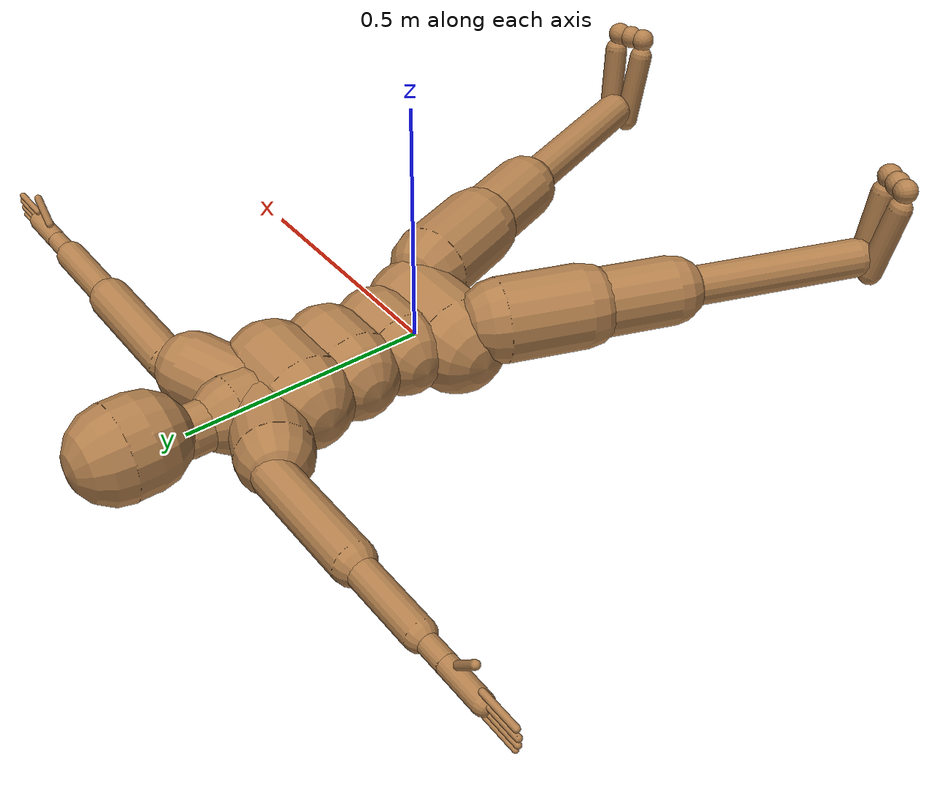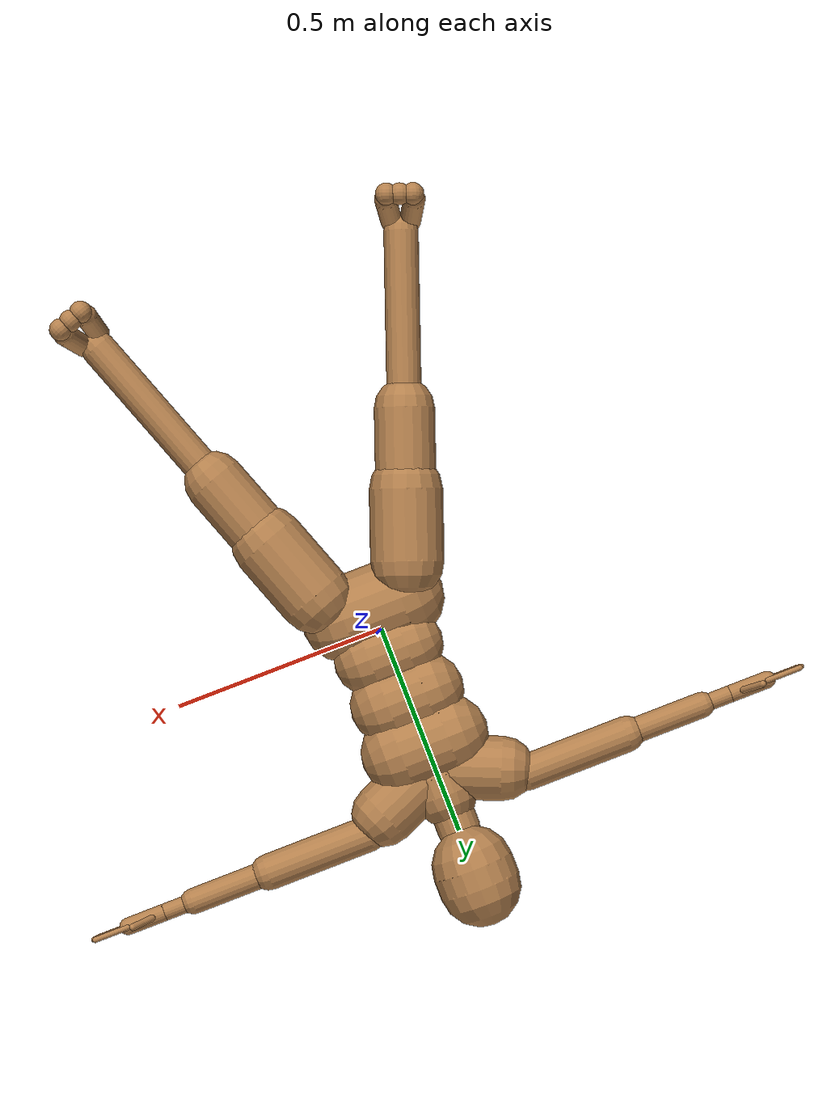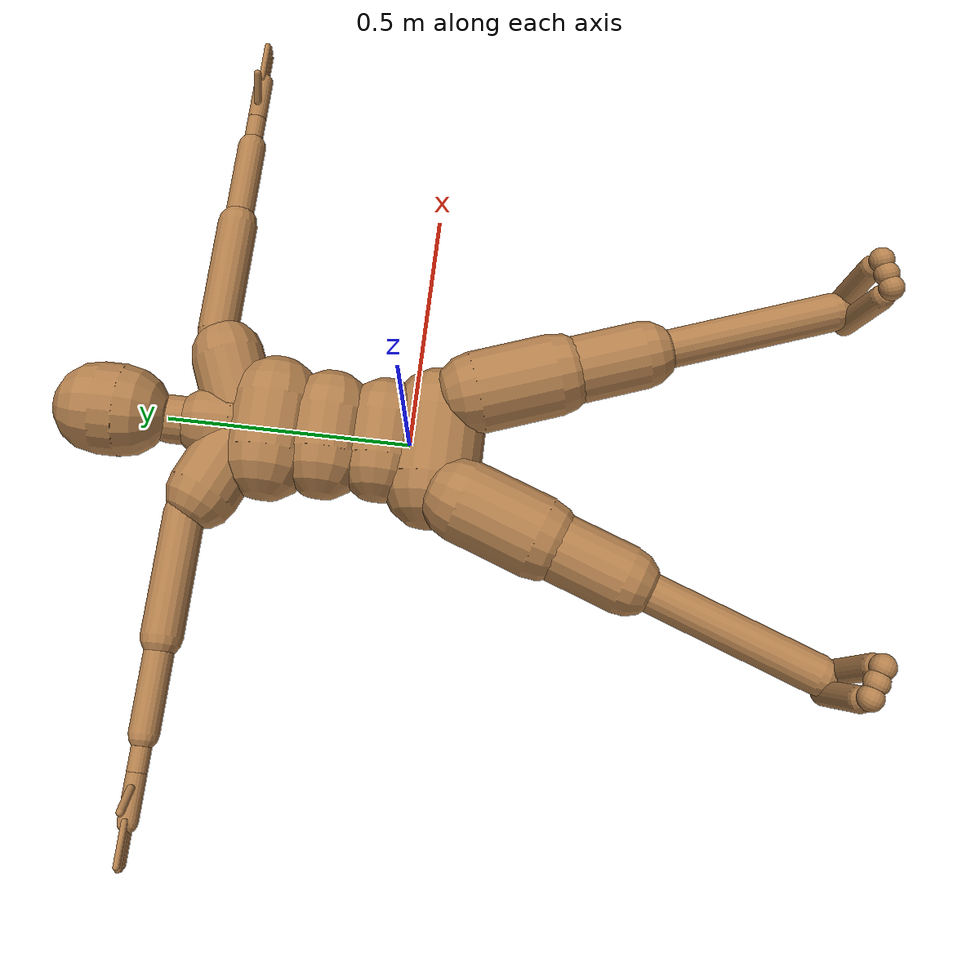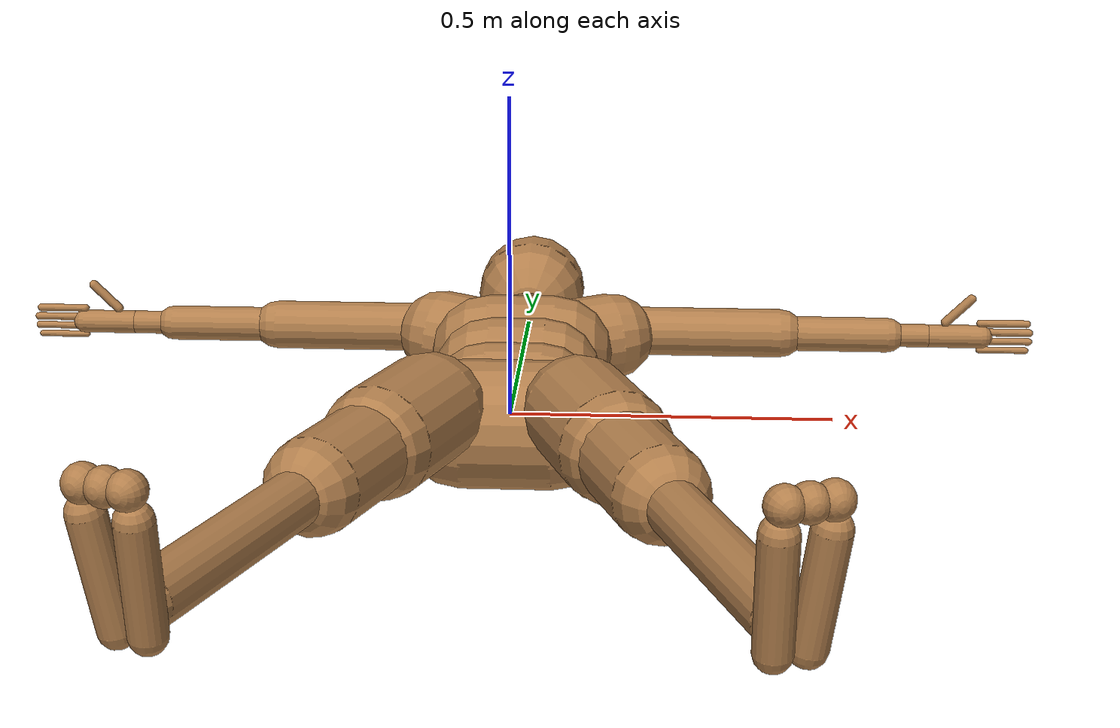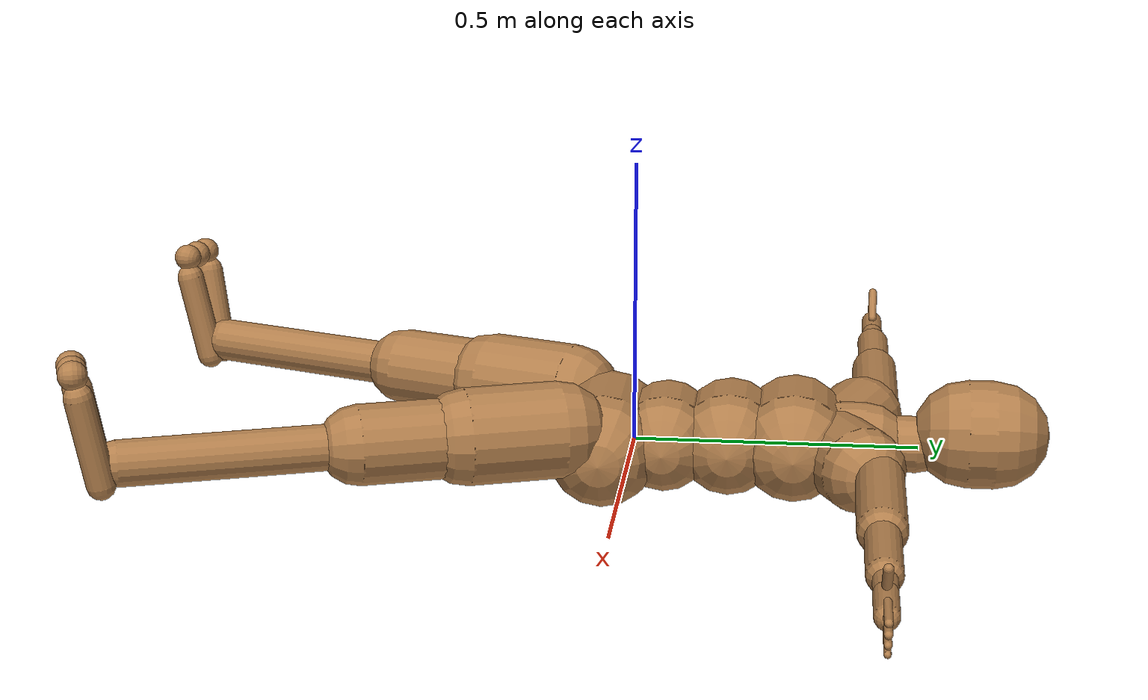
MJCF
<!-- This model has been rescaled and better supports the incorporation of hands. -->
<mujoco model="humanoid_CMU">
  <compiler angle="radian"/>
  <size njmax="500" nconmax="500"/>
  <asset>
    <material name="self" rgba=".7 .5 .3 1"/>
  </asset>

  <default>
    <joint limited="true" solimplimit="0 0.99 0.01" stiffness="1" armature=".01" damping="1"/>
    <geom size="0.03 0 0" condim="1" friction="0.7 0.005 0.0001" solref="0.015 1" solimp="0.99 0.99 0.003"/>
    <general ctrllimited="true" ctrlrange="-1 1"/>
    <default class="humanoid">
      <geom type="capsule" material="self" group="2"/>
      <default class="stiff_medium">
        <joint stiffness="10" damping="2"/>
      </default>
      <default class="stiff_medium_higher">
        <joint stiffness="50" damping="4"/>
      </default>
      <default class="stiff_high">
        <joint stiffness="200" damping="5"/>
      </default>
      <default class="sensor_site">
        <site type="sphere" size="0.01" group="4" rgba="1 0 0 .5"/>
      </default>
      <default class="contact">
        <geom condim="3" friction="1. 0.005 0.0001" solref="0.015 1" solimp="0.98 0.98 0.001" priority="1"/>
      </default>
    </default>
  </default>

  <worldbody>
    <light name="tracking_light" pos="0 0 7" dir="0 0 -1" mode="trackcom"/>
    <camera name="back" pos="0 3 1.4" xyaxes="-1 0 0 0 -1 2" mode="trackcom"/>
    <camera name="side" pos="-3 0 1.4" xyaxes="0 -1 0 1 0 2" mode="trackcom"/>
    <camera name="front_side" pos="-2 -2 0.5" xyaxes="0.5 -0.5 0 0.1 0.1 1"  mode="trackcom"/>
    <body name="root" childclass="humanoid">
      <camera name="bodycam" pos="0 .3 .1" xyaxes="-1 0 0 0 1 0" fovy="80"/>
      <site name="root" size=".01" rgba="0.5 0.5 0.5 0"/>
      <geom name="root_geom" type="capsule" material="self" group="2" size="0.1 0.07" pos="0 -0.05 0" quat="1 0 -1 0"/>
      <body name="lhipjoint">
        <geom name="lhipjoint" type="capsule" material="self" group="2" size="0.008 0.02187363" pos="0.0509685 -0.0459037 0.024723" quat="0.5708 -0.566602 -0.594264 0"/>
        <body name="lfemur" pos="0.101937 -0.0918074 0.0494461" quat="0.984808 0 0 0.173648">
          <joint type="hinge" name="lfemurrz" pos="0 0 0" axis="0 0 1" range="-1.0472 1.22173" class="stiff_medium"/>
          <joint type="hinge" name="lfemurry" pos="0 0 0" axis="0 1 0" range="-1.22173 1.22173" class="stiff_medium"/>
          <joint type="hinge" name="lfemurrx" pos="0 0 0" axis="1 0 0" range="-2.79253 0.349066" class="stiff_medium"/>
          <geom name="lfemur_upper" type="capsule" material="self" group="2" size="0.085 0.083" pos="0 -0.115473 0" quat="0.696364 -0.696364 -0.122788 -0.122788" mass="0"/>
          <geom name="lfemur" type="capsule" material="self" group="2" size="0.07 0.182226" pos="0 -0.202473 0" quat="0.696364 -0.696364 -0.122788 -0.122788" />
          <body name="ltibia" pos="0 -0.404945 0">
            <joint type="hinge" name="ltibiarx" pos="0 0 0" axis="1 0 0" range="0.01 2.96706"/>
            <geom name="ltibia" type="capsule" material="self" group="2" size="0.04 0.1825614" pos="0 -0.202846 0" quat="0.696364 -0.696364 -0.122788 -0.122788"/>
            <body name="lfoot" pos="0 -0.415693 0" quat="1 -1 0 0">
              <site name="lfoot_touch" type="capsule" pos="0.0 0.02 -0.015" size="0.025 0.01" zaxis="1 0 0" class="sensor_site"/>
              <joint type="hinge" name="lfootrz" pos="0 0 0" axis="0 0 1" range="-1.22173 0.349066" class="stiff_medium"/>
              <joint type="hinge" name="lfootrx" pos="0 0 0" axis="1 0 0" range="-0.785398 0.8" class="stiff_medium"/>
              <geom name="lfoot" type="capsule" material="self" group="2" size="0.025 0.08" pos="-0.0269999975006 -0.05 -0.0113878" quat=" 0.76725516 -0.64051114  0.02306487 -0.02306583" class="contact"/>
              <geom name="lfoot_ch" type="capsule" material="self" group="2" size="0.025 0.08" pos="0.0270000024994 -0.05 -0.0113878" quat=" 0.72887266 -0.59399462 -0.24074283 -0.2407425 " class="contact"/>
              <body name="ltoes" pos="0 -0.156372 -0.0227756">
                <joint type="hinge" name="ltoesrx" pos="0 0 0" axis="1 0 0" range="-1.5708 0.349066"/>
                <geom name="ltoes0" type="sphere" size="0.025" pos="0 -0.01 -.01" class="contact"/>
                <geom name="ltoes1" type="sphere" size="0.025" pos=".03 -0.01 -.01" class="contact"/>
                <geom name="ltoes2" type="sphere" size="0.025" pos="-.03 -0.01 -.01" class="contact"/>
                <site name="ltoes_touch" type="capsule" pos="0.0 -0.01 -0.02" size="0.025 0.03" zaxis="1 0 0" class="sensor_site"/>
              </body>
            </body>
          </body>
        </body>
      </body>
      <body name="rhipjoint">
        <geom name="rhipjoint" type="capsule" material="self" group="2" size="0.008 0.02187363" pos="-0.0509685 -0.0459037 0.024723" quat="0.574856 -0.547594 0.608014 0"/>
        <body name="rfemur" pos="-0.101937 -0.0918074 0.0494461" quat="0.984808 0 0 -0.173648">
          <joint type="hinge" name="rfemurrz" pos="0 0 0" axis="0 0 1" range="-1.22173 1.0472" class="stiff_medium"/>
          <joint type="hinge" name="rfemurry" pos="0 0 0" axis="0 1 0" range="-1.22173 1.22173" class="stiff_medium"/>
          <joint type="hinge" name="rfemurrx" pos="0 0 0" axis="1 0 0" range="-2.79253 0.349066" class="stiff_medium"/>
          <geom name="rfemur_upper" type="capsule" material="self" group="2" size="0.085 0.083" pos="0 -0.115473 0" quat="0.696364 -0.696364 0.122788 0.122788" mass="0"/>
          <geom name="rfemur" type="capsule" material="self" group="2" size="0.07 0.182226" pos="0 -0.202473 0" quat="0.696364 -0.696364 0.122788 0.122788" />
          <body name="rtibia" pos="0 -0.404945 0">
            <joint type="hinge" name="rtibiarx" pos="0 0 0" axis="1 0 0" range="0.01 2.96706"/>
            <geom name="rtibia" type="capsule" material="self" group="2" size="0.04 0.1825614" pos="0 -0.202846 0" quat="0.696364 -0.696364 0.122788 0.122788"/>
            <body name="rfoot" pos="0 -0.415693 0" quat="0.707107 -0.707107 0 0">
              <site name="rfoot_touch" type="capsule" pos="0.0 0.02 -0.015" size="0.025 0.01" zaxis="1 0 0" class="sensor_site"/>
              <joint type="hinge" name="rfootrz" pos="0 0 0" axis="0 0 1" range="-0.349066 1.22173" class="stiff_medium"/>
              <joint type="hinge" name="rfootrx" pos="0 0 0" axis="1 0 0" range="-0.785398 .8" class="stiff_medium"/>
              <geom name="rfoot" type="capsule" material="self" group="2" size="0.025 0.08" pos="-0.0269999965316 -0.05 -0.0113878" quat=" 0.73520687 -0.58633523  0.24050108  0.24050079" class="contact"/>
              <geom name="rfoot_ch" type="capsule" material="self" group="2" size="0.025 0.08" pos="0.0270000034684 -0.05 -0.0113878" quat=" 0.77312469 -0.633231   -0.02545846  0.02545836" class="contact"/>
              <body name="rtoes" pos="0 -0.156372 -0.0227756">
                <joint type="hinge" name="rtoesrx" pos="0 0 0" axis="1 0 0" range="-1.5708 0.349066"/>
                <geom name="rtoes0" type="sphere" size="0.025" pos="0 -0.01 -.01" class="contact"/>
                <geom name="rtoes1" type="sphere" size="0.025" pos=".03 -0.01 -.01" class="contact"/>
                <geom name="rtoes2" type="sphere" size="0.025" pos="-.03 -0.01 -.01" class="contact"/>
                <site name="rtoes_touch" type="capsule" pos="0.0 -0.01 -0.02" size="0.025 0.03" zaxis="1 0 0" class="sensor_site"/>
              </body>
            </body>
          </body>
        </body>
      </body>
      <body name="lowerback">
        <joint type="hinge" name="lowerbackrz" pos="0 0 0" axis="0 0 1" range="-0.523599 0.523599" class="stiff_high"/>
        <joint type="hinge" name="lowerbackry" pos="0 0 0" axis="0 1 0" range="-0.523599 0.523599" class="stiff_high"/>
        <joint type="hinge" name="lowerbackrx" pos="0 0 0" axis="1 0 0" range="-0.349066 0.785398" class="stiff_medium"/>
        <geom name="lowerback" type="capsule" material="self" group="2" size="0.085 0.04540016" pos="0.00282931 0.0566065 0.01" quat="1 0 1 0"/>
        <body name="upperback" pos="0.000565862 0.113213 -0.00805298">
          <joint type="hinge" name="upperbackrz" pos="0 0 0" axis="0 0 1" range="-0.523599 0.523599" class="stiff_high"/>
          <joint type="hinge" name="upperbackry" pos="0 0 0" axis="0 1 0" range="-0.523599 0.523599" class="stiff_high"/>
          <joint type="hinge" name="upperbackrx" pos="0 0 0" axis="1 0 0" range="-0.349066 0.785398" class="stiff_medium"/>
          <geom name="upperback" type="capsule" material="self" group="2" size="0.09 0.04542616" pos="0.000256264 0.0567802 0.02" quat="1 0 1 0"/>
          <body name="thorax" pos="0.000512528 0.11356 0.000936821">
            <joint type="hinge" name="thoraxrz" pos="0 0 0" axis="0 0 1" range="-0.523599 0.523599" class="stiff_high"/>
            <joint type="hinge" name="thoraxry" pos="0 0 0" axis="0 1 0" range="-0.523599 0.523599" class="stiff_high"/>
            <joint type="hinge" name="thoraxrx" pos="0 0 0" axis="1 0 0" range="-0.349066 0.785398" class="stiff_medium"/>
            <geom name="thorax" type="capsule" material="self" group="2" size="0.095 0.0570206" pos="0 0.0569725 0.02" quat="1 0 1 0"/>
            <body name="lowerneck" pos="0 0.113945 0.00468037">
              <joint type="hinge" name="lowerneckrz" pos="0 0 0" axis="0 0 1" range="-0.523599 0.523599" class="stiff_medium_higher"/>
              <joint type="hinge" name="lowerneckry" pos="0 0 0" axis="0 1 0" range="-0.523599 0.523599" class="stiff_medium_higher"/>
              <joint type="hinge" name="lowerneckrx" pos="0 0 0" axis="1 0 0" range="-0.349066 0.785398" class="stiff_medium_higher"/>
              <geom name="lowerneck" type="capsule" material="self" group="2" size="0.075 0.02279225" pos="-0.00165071 0.0452401 0.00534359" quat="1 1 0 0"/>
              <body name="upperneck" pos="-0.00330143 0.0904801 0.0106872">
                <joint type="hinge" name="upperneckrz" pos="0 0 0" axis="0 0 1" range="-0.523599 0.523599" class="stiff_medium_higher"/>
                <joint type="hinge" name="upperneckry" pos="0 0 0" axis="0 1 0" range="-0.523599 0.523599" class="stiff_medium_higher"/>
                <joint type="hinge" name="upperneckrx" pos="0 0 0" axis="1 0 0" range="-0.349066 0.785398" class="stiff_medium_higher"/>
                <geom name="upperneck" type="capsule" material="self" group="2" size="0.05 0.0225272" pos="0.000500875 0.0449956 -0.00224644" quat="1 1 0 0"/>
                <body name="head" pos="0.00100175 0.13 -0.00449288">
                  <camera name="egocentric" pos="0 0 0" xyaxes="-1 0 0 0 1 0" fovy="80"/>
                  <joint type="hinge" name="headrz" pos="0 0 0" axis="0 0 1" range="-0.523599 0.523599" class="stiff_medium_higher"/>
                  <joint type="hinge" name="headry" pos="0 0 0" axis="0 1 0" range="-0.523599 0.523599" class="stiff_medium_higher"/>
                  <joint type="hinge" name="headrx" pos="0 0 0" axis="1 0 0" range="-0.349066 0.785398" class="stiff_medium_higher"/>
                  <geom name="head" type="capsule" material="self" group="2" size="0.095 0.024104" pos="0.000341465 0.048184 0.025" quat="1 1 0 0"/>
                </body>
              </body>
            </body>
            <body name="lclavicle" pos="0 0.113945 0.00468037">
              <joint type="hinge" name="lclaviclerz" pos="0 0 0" axis="0 0 1" range="0 0.349066" class="stiff_high"/>
              <joint type="hinge" name="lclaviclery" pos="0 0 0" axis="0 1 0" range="-0.349066 0.174533" class="stiff_high"/>
              <geom name="lclavicle" type="capsule" material="self" group="2" size="0.075 0.06" pos="0.0918817 0.0382636 0.00535704" quat="0.688 0.279 -0.67 0"/>
              <body name="lhumerus" pos="0.18 0.09 0.0107141" quat="0.183013 0.683013 -0.683013 0.183013">
                <joint type="hinge" name="lhumerusrz" pos="0 0 0" axis="0 0 1" range="-1.1 1.5708" class="stiff_medium"/>
                <joint type="hinge" name="lhumerusry" pos="0 0 0" axis="0 1 0" range="-1.5708 1.5708" class="stiff_medium"/>
                <joint type="hinge" name="lhumerusrx" pos="0 0 0" axis="1 0 0" range="-1.0472 1.5708" class="stiff_medium"/>
                <site name="lhumerus_ft" class="sensor_site"/>
                <geom name="lhumerus" type="capsule" material="self" group="2" size="0.042 0.1245789" pos="0 -0.138421 0" quat="0.612372 -0.612372 0.353553 0.353553"/>
                <body name="lradius" pos="0 -0.276843 0">
                  <joint type="hinge" name="lradiusrx" pos="0 0 0" axis="1 0 0" range="-0.174533 2.96706"/>
                  <geom name="lradius" type="capsule" material="self" group="2" size="0.03 0.08169111" pos="0 -0.0907679 0" quat="0.612372 -0.612372 0.353553 0.353553"/>
                  <site name="lwrist" pos="0 -0.181536 0" quat="-0.5 0 0.866025 0"/>
                  <body name="lwrist" pos="0 -0.181536 0" quat="-0.5 0 0.866025 0">
                    <joint type="hinge" name="lwristry" pos="0 0 0" axis="0 1 0" range="0 3.14159"/>
                    <geom name="lwrist" type="capsule" material="self" group="2" size="0.02 0.03" pos="0 -0.03 0" quat="1.59389e-11 -1.59388e-11 -0.707107 -0.707107"/>
                    <body name="lhand" pos="0 -0.0907676 0">
                      <joint type="hinge" name="lhandrz" pos="0 0 0" axis="0 0 1" range="-0.785398 0.785398"/>
                      <joint type="hinge" name="lhandrx" pos="0 0 0" axis="1 0 0" range="-1.5708 1.5708"/>
                      <site name="lhand_touch" size=".012 0.005 0.015" pos="0 -0.016752 -0.02" quat="0 0 -1 -1" type="capsule" class="sensor_site"/>
                      <geom name="lhand" size="0.02 0.045" pos="0 -0.016752 0" quat="0 0 -1 -1" type="capsule" class="contact"/>
                      <body name="lfingers" pos="0 -0.075 0">
                        <joint type="hinge" name="lfingersrx" pos="0 0.015 0" axis="1 0 0" range="0 1.5708"/>
                        <site name="lfingers_touch" type="box" size="0.023 0.013 0.003" pos="0 -0.042 -0.007" class="sensor_site"/>
                        <geom name="lfinger0" type="capsule" material="self" group="2" size="0.0065 0.04" pos="-.024 -0.025 0" quat="1 -1 0 0" class="contact"/>
                        <geom name="lfinger1" type="capsule" material="self" group="2" size="0.0065 0.04" pos="-.008 -0.03 0" quat="1 -1 0 0" class="contact"/>
                        <geom name="lfinger2" type="capsule" material="self" group="2" size="0.006 0.04" pos=".008 -0.03 0" quat="1 -1 0 0" class="contact"/>
                        <geom name="lfinger3" type="capsule" material="self" group="2" size="0.0055 0.04" pos=".024 -0.025 0" quat="1 -1 0 0" class="contact"/>
                      </body>
                      <body name="lthumb" pos="-.025 0 0" quat="0.92388 0 0 -0.382683">
                        <joint type="hinge" name="lthumbrz" pos="0 0 0" axis="0 0 1" range="-0.785398 0.785398"/>
                        <joint type="hinge" name="lthumbrx" pos="0 0 0" axis="1 0 0" range="0 1.57"/>
                        <site name="lthumb_touch" type="box" size="0.006 0.013 0.003" pos="0 -0.043 -0.007" class="sensor_site"/>
                        <geom name="lthumb" type="capsule" material="self" group="2" size="0.008 0.03" pos="0 -0.03 0" quat="0 0 -1 -1" class="contact"/>
                      </body>
                    </body>
                  </body>
                </body>
              </body>
            </body>
            <body name="rclavicle" pos="0 0.113945 0.00468037">
              <joint type="hinge" name="rclaviclerz" pos="0 0 0" axis="0 0 1" range="-0.349066 0" class="stiff_high"/>
              <joint type="hinge" name="rclaviclery" pos="0 0 0" axis="0 1 0" range="-0.174533 0.349066" class="stiff_high"/>
              <geom name="rclavicle" type="capsule" material="self" group="2" size="0.075 0.06" pos="-0.0918817 0.0382636 0.00535704" quat="0.688 0.279 0.67 0"/>
              <body name="rhumerus" pos="-0.18 0.09 0.0107141" quat="0.183013 0.683013 0.683013 -0.183013">
                <joint type="hinge" name="rhumerusrz" pos="0 0 0" axis="0 0 1" range="-1.1 1.5708" class="stiff_medium"/>
                <joint type="hinge" name="rhumerusry" pos="0 0 0" axis="0 1 0" range="-1.5708 1.5708" class="stiff_medium"/>
                <joint type="hinge" name="rhumerusrx" pos="0 0 0" axis="1 0 0" range="-1.0472 1.5708" class="stiff_medium"/>
                <site name="rhumerus_ft" class="sensor_site"/>
                <geom name="rhumerus" type="capsule" material="self" group="2" size="0.042 0.1245789" pos="0 -0.138421 0" quat="0.612372 -0.612372 -0.353553 -0.353553"/>
                <body name="rradius" pos="0 -0.276843 0">
                  <joint type="hinge" name="rradiusrx" pos="0 0 0" axis="1 0 0" range="-0.174533 2.96706"/>
                  <geom name="rradius" type="capsule" material="self" group="2" size="0.03 0.08169111" pos="0 -0.0907679 0" quat="0.61238 -0.612372 -0.353554 -0.353541"/>
                  <body name="rwrist" pos="0 -0.181536 0" quat="-0.5 0 -0.866025 0">
                    <joint type="hinge" name="rwristry" pos="0 0 0" axis="0 1 0" range="-3.14159 0"/>
                    <geom name="rwrist" type="capsule" material="self" group="2" size="0.02 0.03" pos="0 -0.03 0" quat="0 0 1 1"/>
                    <body name="rhand" pos="0 -0.0907676 0">
                      <joint type="hinge" name="rhandrz" pos="0 0 0" axis="0 0 1" range="-0.785398 0.785398"/>
                      <joint type="hinge" name="rhandrx" pos="0 0 0" axis="1 0 0" range="-1.5708 1.5708"/>
                      <geom name="rhand" size="0.02 0.045" pos="0 -0.016752 0" quat="0 0 1 1" type="capsule" class="contact"/>
                      <body name="rfingers" pos="0 -0.075 0">
                        <joint type="hinge" name="rfingersrx" pos="0 0.015 0" axis="1 0 0" range="0 1.5708"/>
                        <site name="rfingers_touch" type="box" size="0.023 0.013 0.003" pos="0 -0.042 -0.007" class="sensor_site"/>
                        <geom name="rfinger0" type="capsule" material="self" group="2" size="0.0065 0.04" pos=".024 -0.025 0" quat="1 -1 0 0" class="contact"/>
                        <geom name="rfinger1" type="capsule" material="self" group="2" size="0.0065 0.04" pos=".008 -0.03 0" quat="1 -1 0 0" class="contact"/>
                        <geom name="rfinger2" type="capsule" material="self" group="2" size="0.006 0.04" pos="-.008 -0.03 0" quat="1 -1 0 0" class="contact"/>
                        <geom name="rfinger3" type="capsule" material="self" group="2" size="0.0055 0.04" pos="-.024 -0.025 0" quat="1 -1 0 0" class="contact"/>
                      </body>
                      <body name="rthumb" pos=".025 0 0" quat="0.92388 0 0 0.382683">
                        <joint type="hinge" name="rthumbrz" pos="0 0 0" axis="0 0 1" range="-0.785398 0.785398"/>
                        <joint type="hinge" name="rthumbrx" pos="0 0 0" axis="1 0 0" range="0 1.57"/>
                        <site name="rthumb_touch" type="box" size="0.006 0.013 0.003" pos="0 -0.043 -0.007" class="sensor_site"/>
                        <geom name="rthumb" type="capsule" material="self" group="2" size="0.008 0.03" pos="0 -0.03 0" quat="6.21773e-11 -6.35284e-11 0.707107 0.707107" class="contact"/>
                      </body>
                    </body>
                  </body>
                </body>
              </body>
            </body>
          </body>
        </body>
      </body>
    </body>
  </worldbody>

  <contact>
    <exclude body1="lclavicle" body2="rclavicle"/>
    <exclude body1="lowerneck" body2="lclavicle"/>
    <exclude body1="lowerneck" body2="rclavicle"/>
    <exclude body1="upperneck" body2="lclavicle"/>
    <exclude body1="upperneck" body2="rclavicle"/>
  </contact>

  <actuator>
    <motor name="headrx" joint="headrx" gear="20"/>
    <motor name="headry" joint="headry" gear="20"/>
    <motor name="headrz" joint="headrz" gear="20"/>
    <motor name="lclaviclery" joint="lclaviclery" gear="20"/>
    <motor name="lclaviclerz" joint="lclaviclerz" gear="20"/>
    <motor name="lfemurrx" joint="lfemurrx" gear="120"/>
    <motor name="lfemurry" joint="lfemurry" gear="40"/>
    <motor name="lfemurrz" joint="lfemurrz" gear="40"/>
    <motor name="lfingersrx" joint="lfingersrx" gear="20"/>
    <motor name="lfootrx" joint="lfootrx" gear="20"/>
    <motor name="lfootrz" joint="lfootrz" gear="20"/>
    <motor name="lhandrx" joint="lhandrx" gear="20"/>
    <motor name="lhandrz" joint="lhandrz" gear="20"/>
    <motor name="lhumerusrx" joint="lhumerusrx" gear="40"/>
    <motor name="lhumerusry" joint="lhumerusry" gear="40"/>
    <motor name="lhumerusrz" joint="lhumerusrz" gear="40"/>
    <motor name="lowerbackrx" joint="lowerbackrx" gear="40"/>
    <motor name="lowerbackry" joint="lowerbackry" gear="40"/>
    <motor name="lowerbackrz" joint="lowerbackrz" gear="40"/>
    <motor name="lowerneckrx" joint="lowerneckrx" gear="20"/>
    <motor name="lowerneckry" joint="lowerneckry" gear="20"/>
    <motor name="lowerneckrz" joint="lowerneckrz" gear="20"/>
    <motor name="lradiusrx" joint="lradiusrx" gear="40"/>
    <motor name="lthumbrx" joint="lthumbrx" gear="20"/>
    <motor name="lthumbrz" joint="lthumbrz" gear="20"/>
    <motor name="ltibiarx" joint="ltibiarx" gear="80"/>
    <motor name="ltoesrx" joint="ltoesrx" gear="20"/>
    <motor name="lwristry" joint="lwristry" gear="20"/>
    <motor name="rclaviclery" joint="rclaviclery" gear="20"/>
    <motor name="rclaviclerz" joint="rclaviclerz" gear="20"/>
    <motor name="rfemurrx" joint="rfemurrx" gear="120"/>
    <motor name="rfemurry" joint="rfemurry" gear="40"/>
    <motor name="rfemurrz" joint="rfemurrz" gear="40"/>
    <motor name="rfingersrx" joint="rfingersrx" gear="20"/>
    <motor name="rfootrx" joint="rfootrx" gear="20"/>
    <motor name="rfootrz" joint="rfootrz" gear="20"/>
    <motor name="rhandrx" joint="rhandrx" gear="20"/>
    <motor name="rhandrz" joint="rhandrz" gear="20"/>
    <motor name="rhumerusrx" joint="rhumerusrx" gear="40"/>
    <motor name="rhumerusry" joint="rhumerusry" gear="40"/>
    <motor name="rhumerusrz" joint="rhumerusrz" gear="40"/>
    <motor name="rradiusrx" joint="rradiusrx" gear="40"/>
    <motor name="rthumbrx" joint="rthumbrx" gear="20"/>
    <motor name="rthumbrz" joint="rthumbrz" gear="20"/>
    <motor name="rtibiarx" joint="rtibiarx" gear="80"/>
    <motor name="rtoesrx" joint="rtoesrx" gear="20"/>
    <motor name="rwristry" joint="rwristry" gear="20"/>
    <motor name="thoraxrx" joint="thoraxrx" gear="40"/>
    <motor name="thoraxry" joint="thoraxry" gear="40"/>
    <motor name="thoraxrz" joint="thoraxrz" gear="40"/>
    <motor name="upperbackrx" joint="upperbackrx" gear="40"/>
    <motor name="upperbackry" joint="upperbackry" gear="40"/>
    <motor name="upperbackrz" joint="upperbackrz" gear="40"/>
    <motor name="upperneckrx" joint="upperneckrx" gear="20"/>
    <motor name="upperneckry" joint="upperneckry" gear="20"/>
    <motor name="upperneckrz" joint="upperneckrz" gear="20"/>
  </actuator>

  <sensor>
    <velocimeter name="sensor_root_veloc" site="root"/>
    <gyro name="sensor_root_gyro" site="root"/>
    <accelerometer name="sensor_root_accel" site="root"/>
    <touch name="sensor_touch_lhand" site="lhand_touch"/>
    <touch name="sensor_touch_lfingers" site="lfingers_touch"/>
    <touch name="sensor_touch_lthumb" site="lthumb_touch"/>
    <touch name="sensor_touch_rhand" site="rhand_touch"/>
    <touch name="sensor_touch_rfingers" site="rfingers_touch"/>
    <touch name="sensor_touch_rthumb" site="rthumb_touch"/>
    <touch name="sensor_touch_ltoes" site="ltoes_touch"/>
    <touch name="sensor_touch_rtoes" site="rtoes_touch"/>
    <touch name="sensor_touch_rfoot" site="rfoot_touch"/>
    <touch name="sensor_touch_lfoot" site="lfoot_touch"/>
    <torque name="sensor_torque_lhumerus" site="lhumerus_ft"/>
    <torque name="sensor_torque_rhumerus" site="rhumerus_ft"/>
  </sensor>

</mujoco>
